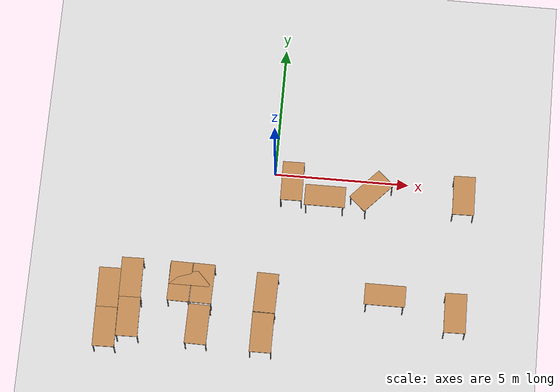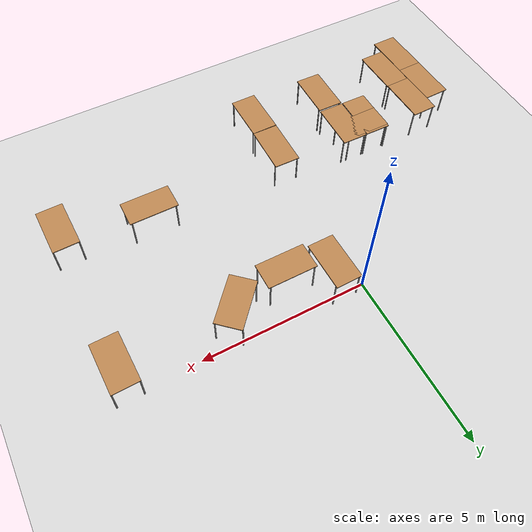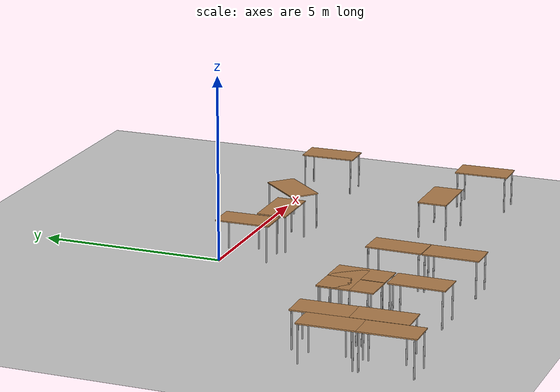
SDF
<sdf version="1.7">
 <world name="default">
  <model name="ground_plane">
   <static>1</static>
   <link name="link">
    <collision name="collision">
     <geometry><plane><normal>0 0 1</normal><size>100 100</size></plane></geometry>
     <surface>
      <contact><collide_bitmask>65535</collide_bitmask></contact>
      <friction><ode><mu>100</mu><mu2>50</mu2></ode></friction>
     </surface>
    </collision>
    <visual name="visual">
     <cast_shadows>0</cast_shadows>
     <geometry><plane><normal>0 0 1</normal><size>100 100</size></plane></geometry>
     <material>
      <script><uri>file://media/materials/scripts/gazebo.material</uri><name>Gazebo/Grey</name></script>
     </material>
    </visual>
   </link>
  </model>
  <model name="table">
   <static>1</static>
   <link name="link">
    <collision name="surface">
     <pose>0 0 1 0 -0 0</pose>
     <geometry><box><size>1.5 0.8 0.03</size></box></geometry>
     <surface><friction><ode><mu>0.6</mu><mu2>0.6</mu2></ode></friction></surface>
    </collision>
    <visual name="visual1">
     <pose>0 0 1 0 -0 0</pose>
     <geometry><box><size>1.5 0.8 0.03</size></box></geometry>
     <material>
      <script><uri>file://media/materials/scripts/gazebo.material</uri><name>Gazebo/Wood</name></script>
     </material>
    </visual>
    <collision name="front_left_leg">
     <pose>0.68 0.38 0.5 0 -0 0</pose>
     <geometry><cylinder><radius>0.02</radius><length>1</length></cylinder></geometry>
    </collision>
    <visual name="front_left_leg">
     <pose>0.68 0.38 0.5 0 -0 0</pose>
     <geometry><cylinder><radius>0.02</radius><length>1</length></cylinder></geometry>
     <material>
      <script><uri>file://media/materials/scripts/gazebo.material</uri><name>Gazebo/Grey</name></script>
     </material>
    </visual>
    <collision name="front_right_leg">
     <pose>0.68 -0.38 0.5 0 -0 0</pose>
     <geometry><cylinder><radius>0.02</radius><length>1</length></cylinder></geometry>
    </collision>
    <visual name="front_right_leg">
     <pose>0.68 -0.38 0.5 0 -0 0</pose>
     <geometry><cylinder><radius>0.02</radius><length>1</length></cylinder></geometry>
     <material>
      <script><uri>file://media/materials/scripts/gazebo.material</uri><name>Gazebo/Grey</name></script>
     </material>
    </visual>
    <collision name="back_right_leg">
     <pose>-0.68 -0.38 0.5 0 -0 0</pose>
     <geometry><cylinder><radius>0.02</radius><length>1</length></cylinder></geometry>
    </collision>
    <visual name="back_right_leg">
     <pose>-0.68 -0.38 0.5 0 -0 0</pose>
     <geometry><cylinder><radius>0.02</radius><length>1</length></cylinder></geometry>
     <material>
      <script><uri>file://media/materials/scripts/gazebo.material</uri><name>Gazebo/Grey</name></script>
     </material>
    </visual>
    <collision name="back_left_leg">
     <pose>-0.68 0.38 0.5 0 -0 0</pose>
     <geometry><cylinder><radius>0.02</radius><length>1</length></cylinder></geometry>
    </collision>
    <visual name="back_left_leg">
     <pose>-0.68 0.38 0.5 0 -0 0</pose>
     <geometry><cylinder><radius>0.02</radius><length>1</length></cylinder></geometry>
     <material>
      <script><uri>file://media/materials/scripts/gazebo.material</uri><name>Gazebo/Grey</name></script>
     </material>
    </visual>
   </link>
   <pose>1.93477 -1.01202 0 0 -0 0</pose>
  </model>
  <model name="table_clone_0_clone_6">
   <static>1</static>
   <link name="link">
    <collision name="surface">
     <pose>0 0 1 0 -0 0</pose>
     <geometry><box><size>1.5 0.8 0.03</size></box></geometry>
     <surface><friction><ode><mu>0.6</mu><mu2>0.6</mu2></ode></friction></surface>
    </collision>
    <visual name="visual1">
     <pose>0 0 1 0 -0 0</pose>
     <geometry><box><size>1.5 0.8 0.03</size></box></geometry>
     <material>
      <script><uri>file://media/materials/scripts/gazebo.material</uri><name>Gazebo/Wood</name></script>
     </material>
    </visual>
    <collision name="front_left_leg">
     <pose>0.68 0.38 0.5 0 -0 0</pose>
     <geometry><cylinder><radius>0.02</radius><length>1</length></cylinder></geometry>
    </collision>
    <visual name="front_left_leg">
     <pose>0.68 0.38 0.5 0 -0 0</pose>
     <geometry><cylinder><radius>0.02</radius><length>1</length></cylinder></geometry>
     <material>
      <script><uri>file://media/materials/scripts/gazebo.material</uri><name>Gazebo/Grey</name></script>
     </material>
    </visual>
    <collision name="front_right_leg">
     <pose>0.68 -0.38 0.5 0 -0 0</pose>
     <geometry><cylinder><radius>0.02</radius><length>1</length></cylinder></geometry>
    </collision>
    <visual name="front_right_leg">
     <pose>0.68 -0.38 0.5 0 -0 0</pose>
     <geometry><cylinder><radius>0.02</radius><length>1</length></cylinder></geometry>
     <material>
      <script><uri>file://media/materials/scripts/gazebo.material</uri><name>Gazebo/Grey</name></script>
     </material>
    </visual>
    <collision name="back_right_leg">
     <pose>-0.68 -0.38 0.5 0 -0 0</pose>
     <geometry><cylinder><radius>0.02</radius><length>1</length></cylinder></geometry>
    </collision>
    <visual name="back_right_leg">
     <pose>-0.68 -0.38 0.5 0 -0 0</pose>
     <geometry><cylinder><radius>0.02</radius><length>1</length></cylinder></geometry>
     <material>
      <script><uri>file://media/materials/scripts/gazebo.material</uri><name>Gazebo/Grey</name></script>
     </material>
    </visual>
    <collision name="back_left_leg">
     <pose>-0.68 0.38 0.5 0 -0 0</pose>
     <geometry><cylinder><radius>0.02</radius><length>1</length></cylinder></geometry>
    </collision>
    <visual name="back_left_leg">
     <pose>-0.68 0.38 0.5 0 -0 0</pose>
     <geometry><cylinder><radius>0.02</radius><length>1</length></cylinder></geometry>
     <material>
      <script><uri>file://media/materials/scripts/gazebo.material</uri><name>Gazebo/Grey</name></script>
     </material>
    </visual>
   </link>
   <pose>7.04645 -0.560802 0 0 -0 1.58908</pose>
  </model>
  <model name="table_clone_0_clone_9">
   <static>1</static>
   <link name="link">
    <collision name="surface">
     <pose>0 0 1 0 -0 0</pose>
     <geometry><box><size>1.5 0.8 0.03</size></box></geometry>
     <surface><friction><ode><mu>0.6</mu><mu2>0.6</mu2></ode></friction></surface>
    </collision>
    <visual name="visual1">
     <pose>0 0 1 0 -0 0</pose>
     <geometry><box><size>1.5 0.8 0.03</size></box></geometry>
     <material>
      <script><uri>file://media/materials/scripts/gazebo.material</uri><name>Gazebo/Wood</name></script>
     </material>
    </visual>
    <collision name="front_left_leg">
     <pose>0.68 0.38 0.5 0 -0 0</pose>
     <geometry><cylinder><radius>0.02</radius><length>1</length></cylinder></geometry>
    </collision>
    <visual name="front_left_leg">
     <pose>0.68 0.38 0.5 0 -0 0</pose>
     <geometry><cylinder><radius>0.02</radius><length>1</length></cylinder></geometry>
     <material>
      <script><uri>file://media/materials/scripts/gazebo.material</uri><name>Gazebo/Grey</name></script>
     </material>
    </visual>
    <collision name="front_right_leg">
     <pose>0.68 -0.38 0.5 0 -0 0</pose>
     <geometry><cylinder><radius>0.02</radius><length>1</length></cylinder></geometry>
    </collision>
    <visual name="front_right_leg">
     <pose>0.68 -0.38 0.5 0 -0 0</pose>
     <geometry><cylinder><radius>0.02</radius><length>1</length></cylinder></geometry>
     <material>
      <script><uri>file://media/materials/scripts/gazebo.material</uri><name>Gazebo/Grey</name></script>
     </material>
    </visual>
    <collision name="back_right_leg">
     <pose>-0.68 -0.38 0.5 0 -0 0</pose>
     <geometry><cylinder><radius>0.02</radius><length>1</length></cylinder></geometry>
    </collision>
    <visual name="back_right_leg">
     <pose>-0.68 -0.38 0.5 0 -0 0</pose>
     <geometry><cylinder><radius>0.02</radius><length>1</length></cylinder></geometry>
     <material>
      <script><uri>file://media/materials/scripts/gazebo.material</uri><name>Gazebo/Grey</name></script>
     </material>
    </visual>
    <collision name="back_left_leg">
     <pose>-0.68 0.38 0.5 0 -0 0</pose>
     <geometry><cylinder><radius>0.02</radius><length>1</length></cylinder></geometry>
    </collision>
    <visual name="back_left_leg">
     <pose>-0.68 0.38 0.5 0 -0 0</pose>
     <geometry><cylinder><radius>0.02</radius><length>1</length></cylinder></geometry>
     <material>
      <script><uri>file://media/materials/scripts/gazebo.material</uri><name>Gazebo/Grey</name></script>
     </material>
    </visual>
   </link>
   <pose>7.02703 -5.11024 0 0 -0 1.58908</pose>
  </model>
  <model name="table_clone_0_clone_clone_1">
   <static>1</static>
   <link name="link">
    <collision name="surface">
     <pose>0 0 1 0 -0 0</pose>
     <geometry><box><size>1.5 0.8 0.03</size></box></geometry>
     <surface><friction><ode><mu>0.6</mu><mu2>0.6</mu2></ode></friction></surface>
    </collision>
    <visual name="visual1">
     <pose>0 0 1 0 -0 0</pose>
     <geometry><box><size>1.5 0.8 0.03</size></box></geometry>
     <material>
      <script><uri>file://media/materials/scripts/gazebo.material</uri><name>Gazebo/Wood</name></script>
     </material>
    </visual>
    <collision name="front_left_leg">
     <pose>0.68 0.38 0.5 0 -0 0</pose>
     <geometry><cylinder><radius>0.02</radius><length>1</length></cylinder></geometry>
    </collision>
    <visual name="front_left_leg">
     <pose>0.68 0.38 0.5 0 -0 0</pose>
     <geometry><cylinder><radius>0.02</radius><length>1</length></cylinder></geometry>
     <material>
      <script><uri>file://media/materials/scripts/gazebo.material</uri><name>Gazebo/Grey</name></script>
     </material>
    </visual>
    <collision name="front_right_leg">
     <pose>0.68 -0.38 0.5 0 -0 0</pose>
     <geometry><cylinder><radius>0.02</radius><length>1</length></cylinder></geometry>
    </collision>
    <visual name="front_right_leg">
     <pose>0.68 -0.38 0.5 0 -0 0</pose>
     <geometry><cylinder><radius>0.02</radius><length>1</length></cylinder></geometry>
     <material>
      <script><uri>file://media/materials/scripts/gazebo.material</uri><name>Gazebo/Grey</name></script>
     </material>
    </visual>
    <collision name="back_right_leg">
     <pose>-0.68 -0.38 0.5 0 -0 0</pose>
     <geometry><cylinder><radius>0.02</radius><length>1</length></cylinder></geometry>
    </collision>
    <visual name="back_right_leg">
     <pose>-0.68 -0.38 0.5 0 -0 0</pose>
     <geometry><cylinder><radius>0.02</radius><length>1</length></cylinder></geometry>
     <material>
      <script><uri>file://media/materials/scripts/gazebo.material</uri><name>Gazebo/Grey</name></script>
     </material>
    </visual>
    <collision name="back_left_leg">
     <pose>-0.68 0.38 0.5 0 -0 0</pose>
     <geometry><cylinder><radius>0.02</radius><length>1</length></cylinder></geometry>
    </collision>
    <visual name="back_left_leg">
     <pose>-0.68 0.38 0.5 0 -0 0</pose>
     <geometry><cylinder><radius>0.02</radius><length>1</length></cylinder></geometry>
     <material>
      <script><uri>file://media/materials/scripts/gazebo.material</uri><name>Gazebo/Grey</name></script>
     </material>
    </visual>
   </link>
   <pose>-5.62606 -6.7098 0 0 -0 1.58908</pose>
  </model>
  <model name="table_clone_0_clone_clone_2">
   <static>1</static>
   <link name="link">
    <collision name="surface">
     <pose>0 0 1 0 -0 0</pose>
     <geometry><box><size>1.5 0.8 0.03</size></box></geometry>
     <surface><friction><ode><mu>0.6</mu><mu2>0.6</mu2></ode></friction></surface>
    </collision>
    <visual name="visual1">
     <pose>0 0 1 0 -0 0</pose>
     <geometry><box><size>1.5 0.8 0.03</size></box></geometry>
     <material>
      <script><uri>file://media/materials/scripts/gazebo.material</uri><name>Gazebo/Wood</name></script>
     </material>
    </visual>
    <collision name="front_left_leg">
     <pose>0.68 0.38 0.5 0 -0 0</pose>
     <geometry><cylinder><radius>0.02</radius><length>1</length></cylinder></geometry>
    </collision>
    <visual name="front_left_leg">
     <pose>0.68 0.38 0.5 0 -0 0</pose>
     <geometry><cylinder><radius>0.02</radius><length>1</length></cylinder></geometry>
     <material>
      <script><uri>file://media/materials/scripts/gazebo.material</uri><name>Gazebo/Grey</name></script>
     </material>
    </visual>
    <collision name="front_right_leg">
     <pose>0.68 -0.38 0.5 0 -0 0</pose>
     <geometry><cylinder><radius>0.02</radius><length>1</length></cylinder></geometry>
    </collision>
    <visual name="front_right_leg">
     <pose>0.68 -0.38 0.5 0 -0 0</pose>
     <geometry><cylinder><radius>0.02</radius><length>1</length></cylinder></geometry>
     <material>
      <script><uri>file://media/materials/scripts/gazebo.material</uri><name>Gazebo/Grey</name></script>
     </material>
    </visual>
    <collision name="back_right_leg">
     <pose>-0.68 -0.38 0.5 0 -0 0</pose>
     <geometry><cylinder><radius>0.02</radius><length>1</length></cylinder></geometry>
    </collision>
    <visual name="back_right_leg">
     <pose>-0.68 -0.38 0.5 0 -0 0</pose>
     <geometry><cylinder><radius>0.02</radius><length>1</length></cylinder></geometry>
     <material>
      <script><uri>file://media/materials/scripts/gazebo.material</uri><name>Gazebo/Grey</name></script>
     </material>
    </visual>
    <collision name="back_left_leg">
     <pose>-0.68 0.38 0.5 0 -0 0</pose>
     <geometry><cylinder><radius>0.02</radius><length>1</length></cylinder></geometry>
    </collision>
    <visual name="back_left_leg">
     <pose>-0.68 0.38 0.5 0 -0 0</pose>
     <geometry><cylinder><radius>0.02</radius><length>1</length></cylinder></geometry>
     <material>
      <script><uri>file://media/materials/scripts/gazebo.material</uri><name>Gazebo/Grey</name></script>
     </material>
    </visual>
   </link>
   <pose>-5.64909 -5.21111 0 0 -0 1.58908</pose>
  </model>
  <model name="table_clone_0_clone_clone_2_clone">
   <static>1</static>
   <link name="link">
    <collision name="surface">
     <pose>0 0 1 0 -0 0</pose>
     <geometry><box><size>1.5 0.8 0.03</size></box></geometry>
     <surface><friction><ode><mu>0.6</mu><mu2>0.6</mu2></ode></friction></surface>
    </collision>
    <visual name="visual1">
     <pose>0 0 1 0 -0 0</pose>
     <geometry><box><size>1.5 0.8 0.03</size></box></geometry>
     <material>
      <script><uri>file://media/materials/scripts/gazebo.material</uri><name>Gazebo/Wood</name></script>
     </material>
    </visual>
    <collision name="front_left_leg">
     <pose>0.68 0.38 0.5 0 -0 0</pose>
     <geometry><cylinder><radius>0.02</radius><length>1</length></cylinder></geometry>
    </collision>
    <visual name="front_left_leg">
     <pose>0.68 0.38 0.5 0 -0 0</pose>
     <geometry><cylinder><radius>0.02</radius><length>1</length></cylinder></geometry>
     <material>
      <script><uri>file://media/materials/scripts/gazebo.material</uri><name>Gazebo/Grey</name></script>
     </material>
    </visual>
    <collision name="front_right_leg">
     <pose>0.68 -0.38 0.5 0 -0 0</pose>
     <geometry><cylinder><radius>0.02</radius><length>1</length></cylinder></geometry>
    </collision>
    <visual name="front_right_leg">
     <pose>0.68 -0.38 0.5 0 -0 0</pose>
     <geometry><cylinder><radius>0.02</radius><length>1</length></cylinder></geometry>
     <material>
      <script><uri>file://media/materials/scripts/gazebo.material</uri><name>Gazebo/Grey</name></script>
     </material>
    </visual>
    <collision name="back_right_leg">
     <pose>-0.68 -0.38 0.5 0 -0 0</pose>
     <geometry><cylinder><radius>0.02</radius><length>1</length></cylinder></geometry>
    </collision>
    <visual name="back_right_leg">
     <pose>-0.68 -0.38 0.5 0 -0 0</pose>
     <geometry><cylinder><radius>0.02</radius><length>1</length></cylinder></geometry>
     <material>
      <script><uri>file://media/materials/scripts/gazebo.material</uri><name>Gazebo/Grey</name></script>
     </material>
    </visual>
    <collision name="back_left_leg">
     <pose>-0.68 0.38 0.5 0 -0 0</pose>
     <geometry><cylinder><radius>0.02</radius><length>1</length></cylinder></geometry>
    </collision>
    <visual name="back_left_leg">
     <pose>-0.68 0.38 0.5 0 -0 0</pose>
     <geometry><cylinder><radius>0.02</radius><length>1</length></cylinder></geometry>
     <material>
      <script><uri>file://media/materials/scripts/gazebo.material</uri><name>Gazebo/Grey</name></script>
     </material>
    </visual>
   </link>
   <pose>-4.86249 -4.76081 0 0 -0 1.58908</pose>
  </model>
  <model name="table_clone_0_clone_clone_2_clone_0">
   <static>1</static>
   <link name="link">
    <collision name="surface">
     <pose>0 0 1 0 -0 0</pose>
     <geometry><box><size>1.5 0.8 0.03</size></box></geometry>
     <surface><friction><ode><mu>0.6</mu><mu2>0.6</mu2></ode></friction></surface>
    </collision>
    <visual name="visual1">
     <pose>0 0 1 0 -0 0</pose>
     <geometry><box><size>1.5 0.8 0.03</size></box></geometry>
     <material>
      <script><uri>file://media/materials/scripts/gazebo.material</uri><name>Gazebo/Wood</name></script>
     </material>
    </visual>
    <collision name="front_left_leg">
     <pose>0.68 0.38 0.5 0 -0 0</pose>
     <geometry><cylinder><radius>0.02</radius><length>1</length></cylinder></geometry>
    </collision>
    <visual name="front_left_leg">
     <pose>0.68 0.38 0.5 0 -0 0</pose>
     <geometry><cylinder><radius>0.02</radius><length>1</length></cylinder></geometry>
     <material>
      <script><uri>file://media/materials/scripts/gazebo.material</uri><name>Gazebo/Grey</name></script>
     </material>
    </visual>
    <collision name="front_right_leg">
     <pose>0.68 -0.38 0.5 0 -0 0</pose>
     <geometry><cylinder><radius>0.02</radius><length>1</length></cylinder></geometry>
    </collision>
    <visual name="front_right_leg">
     <pose>0.68 -0.38 0.5 0 -0 0</pose>
     <geometry><cylinder><radius>0.02</radius><length>1</length></cylinder></geometry>
     <material>
      <script><uri>file://media/materials/scripts/gazebo.material</uri><name>Gazebo/Grey</name></script>
     </material>
    </visual>
    <collision name="back_right_leg">
     <pose>-0.68 -0.38 0.5 0 -0 0</pose>
     <geometry><cylinder><radius>0.02</radius><length>1</length></cylinder></geometry>
    </collision>
    <visual name="back_right_leg">
     <pose>-0.68 -0.38 0.5 0 -0 0</pose>
     <geometry><cylinder><radius>0.02</radius><length>1</length></cylinder></geometry>
     <material>
      <script><uri>file://media/materials/scripts/gazebo.material</uri><name>Gazebo/Grey</name></script>
     </material>
    </visual>
    <collision name="back_left_leg">
     <pose>-0.68 0.38 0.5 0 -0 0</pose>
     <geometry><cylinder><radius>0.02</radius><length>1</length></cylinder></geometry>
    </collision>
    <visual name="back_left_leg">
     <pose>-0.68 0.38 0.5 0 -0 0</pose>
     <geometry><cylinder><radius>0.02</radius><length>1</length></cylinder></geometry>
     <material>
      <script><uri>file://media/materials/scripts/gazebo.material</uri><name>Gazebo/Grey</name></script>
     </material>
    </visual>
   </link>
   <pose>-4.82408 -6.25566 0 0 -0 1.58908</pose>
  </model>
  <model name="table_clone_clone">
   <static>1</static>
   <link name="link">
    <collision name="surface">
     <pose>0 0 1 0 -0 0</pose>
     <geometry><box><size>1.5 0.8 0.03</size></box></geometry>
     <surface><friction><ode><mu>0.6</mu><mu2>0.6</mu2></ode></friction></surface>
    </collision>
    <visual name="visual1">
     <pose>0 0 1 0 -0 0</pose>
     <geometry><box><size>1.5 0.8 0.03</size></box></geometry>
     <material>
      <script><uri>file://media/materials/scripts/gazebo.material</uri><name>Gazebo/Wood</name></script>
     </material>
    </visual>
    <collision name="front_left_leg">
     <pose>0.68 0.38 0.5 0 -0 0</pose>
     <geometry><cylinder><radius>0.02</radius><length>1</length></cylinder></geometry>
    </collision>
    <visual name="front_left_leg">
     <pose>0.68 0.38 0.5 0 -0 0</pose>
     <geometry><cylinder><radius>0.02</radius><length>1</length></cylinder></geometry>
     <material>
      <script><uri>file://media/materials/scripts/gazebo.material</uri><name>Gazebo/Grey</name></script>
     </material>
    </visual>
    <collision name="front_right_leg">
     <pose>0.68 -0.38 0.5 0 -0 0</pose>
     <geometry><cylinder><radius>0.02</radius><length>1</length></cylinder></geometry>
    </collision>
    <visual name="front_right_leg">
     <pose>0.68 -0.38 0.5 0 -0 0</pose>
     <geometry><cylinder><radius>0.02</radius><length>1</length></cylinder></geometry>
     <material>
      <script><uri>file://media/materials/scripts/gazebo.material</uri><name>Gazebo/Grey</name></script>
     </material>
    </visual>
    <collision name="back_right_leg">
     <pose>-0.68 -0.38 0.5 0 -0 0</pose>
     <geometry><cylinder><radius>0.02</radius><length>1</length></cylinder></geometry>
    </collision>
    <visual name="back_right_leg">
     <pose>-0.68 -0.38 0.5 0 -0 0</pose>
     <geometry><cylinder><radius>0.02</radius><length>1</length></cylinder></geometry>
     <material>
      <script><uri>file://media/materials/scripts/gazebo.material</uri><name>Gazebo/Grey</name></script>
     </material>
    </visual>
    <collision name="back_left_leg">
     <pose>-0.68 0.38 0.5 0 -0 0</pose>
     <geometry><cylinder><radius>0.02</radius><length>1</length></cylinder></geometry>
    </collision>
    <visual name="back_left_leg">
     <pose>-0.68 0.38 0.5 0 -0 0</pose>
     <geometry><cylinder><radius>0.02</radius><length>1</length></cylinder></geometry>
     <material>
      <script><uri>file://media/materials/scripts/gazebo.material</uri><name>Gazebo/Grey</name></script>
     </material>
    </visual>
   </link>
   <pose>-2.73474 -4.48856 0 0 -0 0</pose>
  </model>
  <model name="table_clone_clone_clone">
   <static>1</static>
   <link name="link">
    <collision name="surface">
     <pose>0 0 1 0 -0 0</pose>
     <geometry><box><size>1.5 0.8 0.03</size></box></geometry>
     <surface><friction><ode><mu>0.6</mu><mu2>0.6</mu2></ode></friction></surface>
    </collision>
    <visual name="visual1">
     <pose>0 0 1 0 -0 0</pose>
     <geometry><box><size>1.5 0.8 0.03</size></box></geometry>
     <material>
      <script><uri>file://media/materials/scripts/gazebo.material</uri><name>Gazebo/Wood</name></script>
     </material>
    </visual>
    <collision name="front_left_leg">
     <pose>0.68 0.38 0.5 0 -0 0</pose>
     <geometry><cylinder><radius>0.02</radius><length>1</length></cylinder></geometry>
    </collision>
    <visual name="front_left_leg">
     <pose>0.68 0.38 0.5 0 -0 0</pose>
     <geometry><cylinder><radius>0.02</radius><length>1</length></cylinder></geometry>
     <material>
      <script><uri>file://media/materials/scripts/gazebo.material</uri><name>Gazebo/Grey</name></script>
     </material>
    </visual>
    <collision name="front_right_leg">
     <pose>0.68 -0.38 0.5 0 -0 0</pose>
     <geometry><cylinder><radius>0.02</radius><length>1</length></cylinder></geometry>
    </collision>
    <visual name="front_right_leg">
     <pose>0.68 -0.38 0.5 0 -0 0</pose>
     <geometry><cylinder><radius>0.02</radius><length>1</length></cylinder></geometry>
     <material>
      <script><uri>file://media/materials/scripts/gazebo.material</uri><name>Gazebo/Grey</name></script>
     </material>
    </visual>
    <collision name="back_right_leg">
     <pose>-0.68 -0.38 0.5 0 -0 0</pose>
     <geometry><cylinder><radius>0.02</radius><length>1</length></cylinder></geometry>
    </collision>
    <visual name="back_right_leg">
     <pose>-0.68 -0.38 0.5 0 -0 0</pose>
     <geometry><cylinder><radius>0.02</radius><length>1</length></cylinder></geometry>
     <material>
      <script><uri>file://media/materials/scripts/gazebo.material</uri><name>Gazebo/Grey</name></script>
     </material>
    </visual>
    <collision name="back_left_leg">
     <pose>-0.68 0.38 0.5 0 -0 0</pose>
     <geometry><cylinder><radius>0.02</radius><length>1</length></cylinder></geometry>
    </collision>
    <visual name="back_left_leg">
     <pose>-0.68 0.38 0.5 0 -0 0</pose>
     <geometry><cylinder><radius>0.02</radius><length>1</length></cylinder></geometry>
     <material>
      <script><uri>file://media/materials/scripts/gazebo.material</uri><name>Gazebo/Grey</name></script>
     </material>
    </visual>
   </link>
   <pose>-3.07867 -4.76943 0 0 0 -1.59028</pose>
  </model>
  <model name="table_clone_clone_clone_0">
   <static>1</static>
   <link name="link">
    <collision name="surface">
     <pose>0 0 1 0 -0 0</pose>
     <geometry><box><size>1.5 0.8 0.03</size></box></geometry>
     <surface><friction><ode><mu>0.6</mu><mu2>0.6</mu2></ode></friction></surface>
    </collision>
    <visual name="visual1">
     <pose>0 0 1 0 -0 0</pose>
     <geometry><box><size>1.5 0.8 0.03</size></box></geometry>
     <material>
      <script><uri>file://media/materials/scripts/gazebo.material</uri><name>Gazebo/Wood</name></script>
     </material>
    </visual>
    <collision name="front_left_leg">
     <pose>0.68 0.38 0.5 0 -0 0</pose>
     <geometry><cylinder><radius>0.02</radius><length>1</length></cylinder></geometry>
    </collision>
    <visual name="front_left_leg">
     <pose>0.68 0.38 0.5 0 -0 0</pose>
     <geometry><cylinder><radius>0.02</radius><length>1</length></cylinder></geometry>
     <material>
      <script><uri>file://media/materials/scripts/gazebo.material</uri><name>Gazebo/Grey</name></script>
     </material>
    </visual>
    <collision name="front_right_leg">
     <pose>0.68 -0.38 0.5 0 -0 0</pose>
     <geometry><cylinder><radius>0.02</radius><length>1</length></cylinder></geometry>
    </collision>
    <visual name="front_right_leg">
     <pose>0.68 -0.38 0.5 0 -0 0</pose>
     <geometry><cylinder><radius>0.02</radius><length>1</length></cylinder></geometry>
     <material>
      <script><uri>file://media/materials/scripts/gazebo.material</uri><name>Gazebo/Grey</name></script>
     </material>
    </visual>
    <collision name="back_right_leg">
     <pose>-0.68 -0.38 0.5 0 -0 0</pose>
     <geometry><cylinder><radius>0.02</radius><length>1</length></cylinder></geometry>
    </collision>
    <visual name="back_right_leg">
     <pose>-0.68 -0.38 0.5 0 -0 0</pose>
     <geometry><cylinder><radius>0.02</radius><length>1</length></cylinder></geometry>
     <material>
      <script><uri>file://media/materials/scripts/gazebo.material</uri><name>Gazebo/Grey</name></script>
     </material>
    </visual>
    <collision name="back_left_leg">
     <pose>-0.68 0.38 0.5 0 -0 0</pose>
     <geometry><cylinder><radius>0.02</radius><length>1</length></cylinder></geometry>
    </collision>
    <visual name="back_left_leg">
     <pose>-0.68 0.38 0.5 0 -0 0</pose>
     <geometry><cylinder><radius>0.02</radius><length>1</length></cylinder></geometry>
     <material>
      <script><uri>file://media/materials/scripts/gazebo.material</uri><name>Gazebo/Grey</name></script>
     </material>
    </visual>
   </link>
   <pose>-2.25255 -4.77765 0 0 0 -1.59028</pose>
  </model>
  <model name="table_clone_clone_clone_0_clone">
   <static>1</static>
   <link name="link">
    <collision name="surface">
     <pose>0 0 1 0 -0 0</pose>
     <geometry><box><size>1.5 0.8 0.03</size></box></geometry>
     <surface><friction><ode><mu>0.6</mu><mu2>0.6</mu2></ode></friction></surface>
    </collision>
    <visual name="visual1">
     <pose>0 0 1 0 -0 0</pose>
     <geometry><box><size>1.5 0.8 0.03</size></box></geometry>
     <material>
      <script><uri>file://media/materials/scripts/gazebo.material</uri><name>Gazebo/Wood</name></script>
     </material>
    </visual>
    <collision name="front_left_leg">
     <pose>0.68 0.38 0.5 0 -0 0</pose>
     <geometry><cylinder><radius>0.02</radius><length>1</length></cylinder></geometry>
    </collision>
    <visual name="front_left_leg">
     <pose>0.68 0.38 0.5 0 -0 0</pose>
     <geometry><cylinder><radius>0.02</radius><length>1</length></cylinder></geometry>
     <material>
      <script><uri>file://media/materials/scripts/gazebo.material</uri><name>Gazebo/Grey</name></script>
     </material>
    </visual>
    <collision name="front_right_leg">
     <pose>0.68 -0.38 0.5 0 -0 0</pose>
     <geometry><cylinder><radius>0.02</radius><length>1</length></cylinder></geometry>
    </collision>
    <visual name="front_right_leg">
     <pose>0.68 -0.38 0.5 0 -0 0</pose>
     <geometry><cylinder><radius>0.02</radius><length>1</length></cylinder></geometry>
     <material>
      <script><uri>file://media/materials/scripts/gazebo.material</uri><name>Gazebo/Grey</name></script>
     </material>
    </visual>
    <collision name="back_right_leg">
     <pose>-0.68 -0.38 0.5 0 -0 0</pose>
     <geometry><cylinder><radius>0.02</radius><length>1</length></cylinder></geometry>
    </collision>
    <visual name="back_right_leg">
     <pose>-0.68 -0.38 0.5 0 -0 0</pose>
     <geometry><cylinder><radius>0.02</radius><length>1</length></cylinder></geometry>
     <material>
      <script><uri>file://media/materials/scripts/gazebo.material</uri><name>Gazebo/Grey</name></script>
     </material>
    </visual>
    <collision name="back_left_leg">
     <pose>-0.68 0.38 0.5 0 -0 0</pose>
     <geometry><cylinder><radius>0.02</radius><length>1</length></cylinder></geometry>
    </collision>
    <visual name="back_left_leg">
     <pose>-0.68 0.38 0.5 0 -0 0</pose>
     <geometry><cylinder><radius>0.02</radius><length>1</length></cylinder></geometry>
     <material>
      <script><uri>file://media/materials/scripts/gazebo.material</uri><name>Gazebo/Grey</name></script>
     </material>
    </visual>
   </link>
   <pose>0.095079 -4.92861 0 0 0 -1.59028</pose>
  </model>
  <model name="table_clone_clone_0">
   <static>1</static>
   <link name="link">
    <collision name="surface">
     <pose>0 0 1 0 -0 0</pose>
     <geometry><box><size>1.5 0.8 0.03</size></box></geometry>
     <surface><friction><ode><mu>0.6</mu><mu2>0.6</mu2></ode></friction></surface>
    </collision>
    <visual name="visual1">
     <pose>0 0 1 0 -0 0</pose>
     <geometry><box><size>1.5 0.8 0.03</size></box></geometry>
     <material>
      <script><uri>file://media/materials/scripts/gazebo.material</uri><name>Gazebo/Wood</name></script>
     </material>
    </visual>
    <collision name="front_left_leg">
     <pose>0.68 0.38 0.5 0 -0 0</pose>
     <geometry><cylinder><radius>0.02</radius><length>1</length></cylinder></geometry>
    </collision>
    <visual name="front_left_leg">
     <pose>0.68 0.38 0.5 0 -0 0</pose>
     <geometry><cylinder><radius>0.02</radius><length>1</length></cylinder></geometry>
     <material>
      <script><uri>file://media/materials/scripts/gazebo.material</uri><name>Gazebo/Grey</name></script>
     </material>
    </visual>
    <collision name="front_right_leg">
     <pose>0.68 -0.38 0.5 0 -0 0</pose>
     <geometry><cylinder><radius>0.02</radius><length>1</length></cylinder></geometry>
    </collision>
    <visual name="front_right_leg">
     <pose>0.68 -0.38 0.5 0 -0 0</pose>
     <geometry><cylinder><radius>0.02</radius><length>1</length></cylinder></geometry>
     <material>
      <script><uri>file://media/materials/scripts/gazebo.material</uri><name>Gazebo/Grey</name></script>
     </material>
    </visual>
    <collision name="back_right_leg">
     <pose>-0.68 -0.38 0.5 0 -0 0</pose>
     <geometry><cylinder><radius>0.02</radius><length>1</length></cylinder></geometry>
    </collision>
    <visual name="back_right_leg">
     <pose>-0.68 -0.38 0.5 0 -0 0</pose>
     <geometry><cylinder><radius>0.02</radius><length>1</length></cylinder></geometry>
     <material>
      <script><uri>file://media/materials/scripts/gazebo.material</uri><name>Gazebo/Grey</name></script>
     </material>
    </visual>
    <collision name="back_left_leg">
     <pose>-0.68 0.38 0.5 0 -0 0</pose>
     <geometry><cylinder><radius>0.02</radius><length>1</length></cylinder></geometry>
    </collision>
    <visual name="back_left_leg">
     <pose>-0.68 0.38 0.5 0 -0 0</pose>
     <geometry><cylinder><radius>0.02</radius><length>1</length></cylinder></geometry>
     <material>
      <script><uri>file://media/materials/scripts/gazebo.material</uri><name>Gazebo/Grey</name></script>
     </material>
    </visual>
   </link>
   <pose>0.074544 -6.44489 0 0 0 -1.57013</pose>
  </model>
  <model name="table_clone_1">
   <static>1</static>
   <link name="link">
    <collision name="surface">
     <pose>0 0 1 0 -0 0</pose>
     <geometry><box><size>1.5 0.8 0.03</size></box></geometry>
     <surface><friction><ode><mu>0.6</mu><mu2>0.6</mu2></ode></friction></surface>
    </collision>
    <visual name="visual1">
     <pose>0 0 1 0 -0 0</pose>
     <geometry><box><size>1.5 0.8 0.03</size></box></geometry>
     <material>
      <script><uri>file://media/materials/scripts/gazebo.material</uri><name>Gazebo/Wood</name></script>
     </material>
    </visual>
    <collision name="front_left_leg">
     <pose>0.68 0.38 0.5 0 -0 0</pose>
     <geometry><cylinder><radius>0.02</radius><length>1</length></cylinder></geometry>
    </collision>
    <visual name="front_left_leg">
     <pose>0.68 0.38 0.5 0 -0 0</pose>
     <geometry><cylinder><radius>0.02</radius><length>1</length></cylinder></geometry>
     <material>
      <script><uri>file://media/materials/scripts/gazebo.material</uri><name>Gazebo/Grey</name></script>
     </material>
    </visual>
    <collision name="front_right_leg">
     <pose>0.68 -0.38 0.5 0 -0 0</pose>
     <geometry><cylinder><radius>0.02</radius><length>1</length></cylinder></geometry>
    </collision>
    <visual name="front_right_leg">
     <pose>0.68 -0.38 0.5 0 -0 0</pose>
     <geometry><cylinder><radius>0.02</radius><length>1</length></cylinder></geometry>
     <material>
      <script><uri>file://media/materials/scripts/gazebo.material</uri><name>Gazebo/Grey</name></script>
     </material>
    </visual>
    <collision name="back_right_leg">
     <pose>-0.68 -0.38 0.5 0 -0 0</pose>
     <geometry><cylinder><radius>0.02</radius><length>1</length></cylinder></geometry>
    </collision>
    <visual name="back_right_leg">
     <pose>-0.68 -0.38 0.5 0 -0 0</pose>
     <geometry><cylinder><radius>0.02</radius><length>1</length></cylinder></geometry>
     <material>
      <script><uri>file://media/materials/scripts/gazebo.material</uri><name>Gazebo/Grey</name></script>
     </material>
    </visual>
    <collision name="back_left_leg">
     <pose>-0.68 0.38 0.5 0 -0 0</pose>
     <geometry><cylinder><radius>0.02</radius><length>1</length></cylinder></geometry>
    </collision>
    <visual name="back_left_leg">
     <pose>-0.68 0.38 0.5 0 -0 0</pose>
     <geometry><cylinder><radius>0.02</radius><length>1</length></cylinder></geometry>
     <material>
      <script><uri>file://media/materials/scripts/gazebo.material</uri><name>Gazebo/Grey</name></script>
     </material>
    </visual>
   </link>
   <pose>4.42862 -4.64955 0 0 -0 0</pose>
  </model>
  <model name="table_clone_2_clone_clone_clone_0">
   <static>1</static>
   <link name="link">
    <collision name="surface">
     <pose>0 0 1 0 -0 0</pose>
     <geometry><box><size>1.5 0.8 0.03</size></box></geometry>
     <surface><friction><ode><mu>0.6</mu><mu2>0.6</mu2></ode></friction></surface>
    </collision>
    <visual name="visual1">
     <pose>0 0 1 0 -0 0</pose>
     <geometry><box><size>1.5 0.8 0.03</size></box></geometry>
     <material>
      <script><uri>file://media/materials/scripts/gazebo.material</uri><name>Gazebo/Wood</name></script>
     </material>
    </visual>
    <collision name="front_left_leg">
     <pose>0.68 0.38 0.5 0 -0 0</pose>
     <geometry><cylinder><radius>0.02</radius><length>1</length></cylinder></geometry>
    </collision>
    <visual name="front_left_leg">
     <pose>0.68 0.38 0.5 0 -0 0</pose>
     <geometry><cylinder><radius>0.02</radius><length>1</length></cylinder></geometry>
     <material>
      <script><uri>file://media/materials/scripts/gazebo.material</uri><name>Gazebo/Grey</name></script>
     </material>
    </visual>
    <collision name="front_right_leg">
     <pose>0.68 -0.38 0.5 0 -0 0</pose>
     <geometry><cylinder><radius>0.02</radius><length>1</length></cylinder></geometry>
    </collision>
    <visual name="front_right_leg">
     <pose>0.68 -0.38 0.5 0 -0 0</pose>
     <geometry><cylinder><radius>0.02</radius><length>1</length></cylinder></geometry>
     <material>
      <script><uri>file://media/materials/scripts/gazebo.material</uri><name>Gazebo/Grey</name></script>
     </material>
    </visual>
    <collision name="back_right_leg">
     <pose>-0.68 -0.38 0.5 0 -0 0</pose>
     <geometry><cylinder><radius>0.02</radius><length>1</length></cylinder></geometry>
    </collision>
    <visual name="back_right_leg">
     <pose>-0.68 -0.38 0.5 0 -0 0</pose>
     <geometry><cylinder><radius>0.02</radius><length>1</length></cylinder></geometry>
     <material>
      <script><uri>file://media/materials/scripts/gazebo.material</uri><name>Gazebo/Grey</name></script>
     </material>
    </visual>
    <collision name="back_left_leg">
     <pose>-0.68 0.38 0.5 0 -0 0</pose>
     <geometry><cylinder><radius>0.02</radius><length>1</length></cylinder></geometry>
    </collision>
    <visual name="back_left_leg">
     <pose>-0.68 0.38 0.5 0 -0 0</pose>
     <geometry><cylinder><radius>0.02</radius><length>1</length></cylinder></geometry>
     <material>
      <script><uri>file://media/materials/scripts/gazebo.material</uri><name>Gazebo/Grey</name></script>
     </material>
    </visual>
   </link>
   <pose>0.684996 -0.53817 0 0 0 -1.55798</pose>
  </model>
  <model name="table_clone_3_clone_clone">
   <static>1</static>
   <link name="link">
    <collision name="surface">
     <pose>0 0 1 0 -0 0</pose>
     <geometry><box><size>1.5 0.8 0.03</size></box></geometry>
     <surface><friction><ode><mu>0.6</mu><mu2>0.6</mu2></ode></friction></surface>
    </collision>
    <visual name="visual1">
     <pose>0 0 1 0 -0 0</pose>
     <geometry><box><size>1.5 0.8 0.03</size></box></geometry>
     <material>
      <script><uri>file://media/materials/scripts/gazebo.material</uri><name>Gazebo/Wood</name></script>
     </material>
    </visual>
    <collision name="front_left_leg">
     <pose>0.68 0.38 0.5 0 -0 0</pose>
     <geometry><cylinder><radius>0.02</radius><length>1</length></cylinder></geometry>
    </collision>
    <visual name="front_left_leg">
     <pose>0.68 0.38 0.5 0 -0 0</pose>
     <geometry><cylinder><radius>0.02</radius><length>1</length></cylinder></geometry>
     <material>
      <script><uri>file://media/materials/scripts/gazebo.material</uri><name>Gazebo/Grey</name></script>
     </material>
    </visual>
    <collision name="front_right_leg">
     <pose>0.68 -0.38 0.5 0 -0 0</pose>
     <geometry><cylinder><radius>0.02</radius><length>1</length></cylinder></geometry>
    </collision>
    <visual name="front_right_leg">
     <pose>0.68 -0.38 0.5 0 -0 0</pose>
     <geometry><cylinder><radius>0.02</radius><length>1</length></cylinder></geometry>
     <material>
      <script><uri>file://media/materials/scripts/gazebo.material</uri><name>Gazebo/Grey</name></script>
     </material>
    </visual>
    <collision name="back_right_leg">
     <pose>-0.68 -0.38 0.5 0 -0 0</pose>
     <geometry><cylinder><radius>0.02</radius><length>1</length></cylinder></geometry>
    </collision>
    <visual name="back_right_leg">
     <pose>-0.68 -0.38 0.5 0 -0 0</pose>
     <geometry><cylinder><radius>0.02</radius><length>1</length></cylinder></geometry>
     <material>
      <script><uri>file://media/materials/scripts/gazebo.material</uri><name>Gazebo/Grey</name></script>
     </material>
    </visual>
    <collision name="back_left_leg">
     <pose>-0.68 0.38 0.5 0 -0 0</pose>
     <geometry><cylinder><radius>0.02</radius><length>1</length></cylinder></geometry>
    </collision>
    <visual name="back_left_leg">
     <pose>-0.68 0.38 0.5 0 -0 0</pose>
     <geometry><cylinder><radius>0.02</radius><length>1</length></cylinder></geometry>
     <material>
      <script><uri>file://media/materials/scripts/gazebo.material</uri><name>Gazebo/Grey</name></script>
     </material>
    </visual>
   </link>
   <pose>3.63453 -0.672697 0 0 -0 0.829359</pose>
  </model>
  <model name="table_clone_clone_clone_0_clone_0">
   <static>1</static>
   <link name="link">
    <collision name="surface">
     <pose>0 0 1 0 -0 0</pose>
     <geometry><box><size>1.5 0.8 0.03</size></box></geometry>
     <surface><friction><ode><mu>0.6</mu><mu2>0.6</mu2></ode></friction></surface>
    </collision>
    <visual name="visual1">
     <pose>0 0 1 0 -0 0</pose>
     <geometry><box><size>1.5 0.8 0.03</size></box></geometry>
     <material>
      <script><uri>file://media/materials/scripts/gazebo.material</uri><name>Gazebo/Wood</name></script>
     </material>
    </visual>
    <collision name="front_left_leg">
     <pose>0.68 0.38 0.5 0 -0 0</pose>
     <geometry><cylinder><radius>0.02</radius><length>1</length></cylinder></geometry>
    </collision>
    <visual name="front_left_leg">
     <pose>0.68 0.38 0.5 0 -0 0</pose>
     <geometry><cylinder><radius>0.02</radius><length>1</length></cylinder></geometry>
     <material>
      <script><uri>file://media/materials/scripts/gazebo.material</uri><name>Gazebo/Grey</name></script>
     </material>
    </visual>
    <collision name="front_right_leg">
     <pose>0.68 -0.38 0.5 0 -0 0</pose>
     <geometry><cylinder><radius>0.02</radius><length>1</length></cylinder></geometry>
    </collision>
    <visual name="front_right_leg">
     <pose>0.68 -0.38 0.5 0 -0 0</pose>
     <geometry><cylinder><radius>0.02</radius><length>1</length></cylinder></geometry>
     <material>
      <script><uri>file://media/materials/scripts/gazebo.material</uri><name>Gazebo/Grey</name></script>
     </material>
    </visual>
    <collision name="back_right_leg">
     <pose>-0.68 -0.38 0.5 0 -0 0</pose>
     <geometry><cylinder><radius>0.02</radius><length>1</length></cylinder></geometry>
    </collision>
    <visual name="back_right_leg">
     <pose>-0.68 -0.38 0.5 0 -0 0</pose>
     <geometry><cylinder><radius>0.02</radius><length>1</length></cylinder></geometry>
     <material>
      <script><uri>file://media/materials/scripts/gazebo.material</uri><name>Gazebo/Grey</name></script>
     </material>
    </visual>
    <collision name="back_left_leg">
     <pose>-0.68 0.38 0.5 0 -0 0</pose>
     <geometry><cylinder><radius>0.02</radius><length>1</length></cylinder></geometry>
    </collision>
    <visual name="back_left_leg">
     <pose>-0.68 0.38 0.5 0 -0 0</pose>
     <geometry><cylinder><radius>0.02</radius><length>1</length></cylinder></geometry>
     <material>
      <script><uri>file://media/materials/scripts/gazebo.material</uri><name>Gazebo/Grey</name></script>
     </material>
    </visual>
   </link>
   <pose>-2.28813 -6.33451 0 0 0 -1.59028</pose>
  </model>
  <model name="cardboard_box_1">
   <pose>-0.38655 -3.57908 -73067.4 0 -0 0</pose>
   <link name="link">
    <pose>0.006438 -3.96264 0.149 0 -0 0</pose>
    <inertial>
     <inertia><ixx>1</ixx><ixy>0</ixy><ixz>0</ixz><iyy>1</iyy><iyz>0</iyz><izz>1</izz></inertia>
     <mass>1</mass>
    </inertial>
    <velocity>0 0 0 0 -0 0</velocity>
    <acceleration>0 1.9e-05 0 -0.000128 -2e-06 0</acceleration>
    <wrench>-1e-06 3.8e-05 -1e-06 0 -0 0</wrench>
   </link>
   <scale>1 1 1</scale>
  </model>
 </world>
</sdf>
